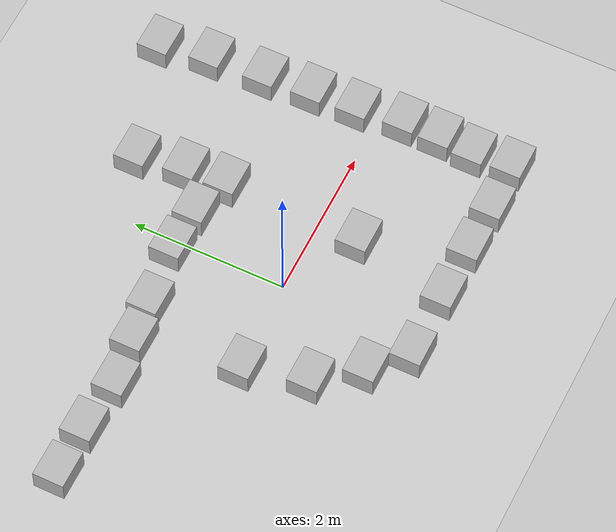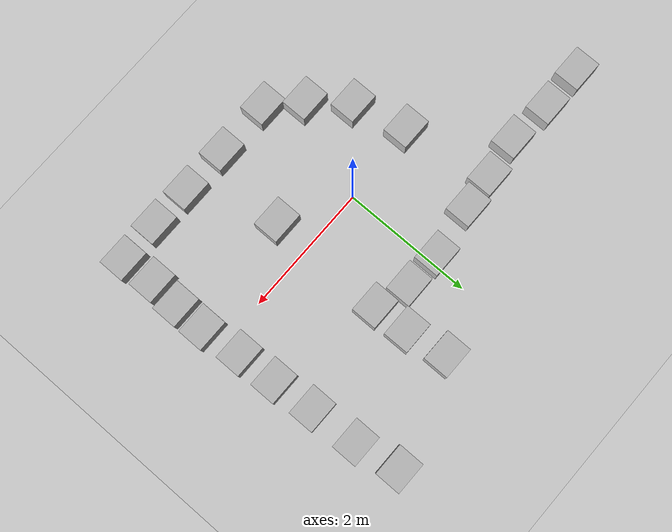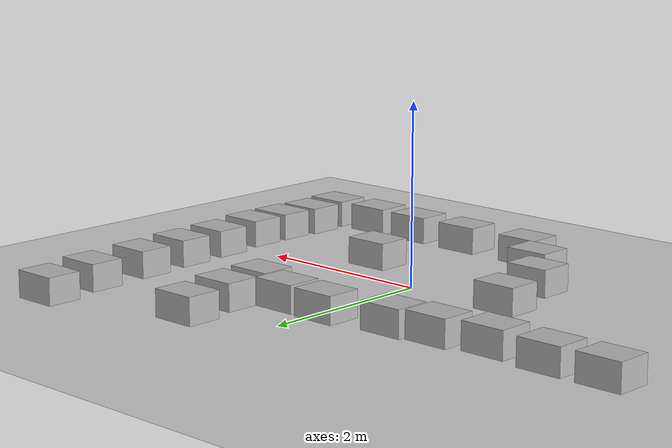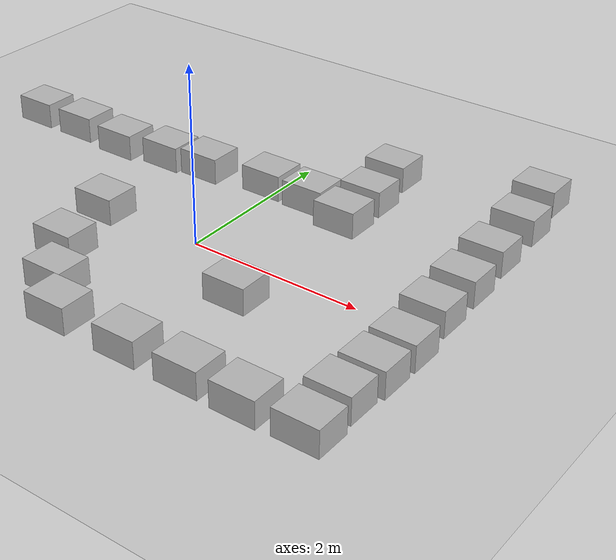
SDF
<sdf version="1.7">
 <world name="default">
  <light name="sun" type="directional">
   <pose>0 0 10 0 -0 0</pose>
   <diffuse>0.8 0.8 0.8 1</diffuse>
   <specular>0.2 0.2 0.2 1</specular>
   <attenuation>
    <range>1000</range>
    <constant>0.9</constant>
    <linear>0.01</linear>
    <quadratic>0.001</quadratic>
   </attenuation>
   <direction>-0.5 0.1 -0.9</direction>
   <spot><inner_angle>0</inner_angle><outer_angle>0</outer_angle><falloff>0</falloff></spot>
  </light>
  <model name="ground_plane">
   <static>1</static>
   <link name="link">
    <collision name="collision">
     <geometry><plane><normal>0 0 1</normal><size>100 100</size></plane></geometry>
     <surface>
      <contact><collide_bitmask>65535</collide_bitmask></contact>
      <friction><ode><mu>100</mu><mu2>50</mu2></ode></friction>
     </surface>
    </collision>
    <visual name="visual">
     <cast_shadows>0</cast_shadows>
     <geometry><plane><normal>0 0 1</normal><size>100 100</size></plane></geometry>
     <material>
      <script><uri>file://media/materials/scripts/gazebo.material</uri><name>Gazebo/Grey</name></script>
     </material>
    </visual>
   </link>
  </model>
  <gravity>0 0 -9.8</gravity>
  <magnetic_field>6e-06 2.3e-05 -4.2e-05</magnetic_field>
  <atmosphere type="adiabatic"/>
  <physics type="ode">
   <max_step_size>0.001</max_step_size>
   <real_time_factor>1</real_time_factor>
   <real_time_update_rate>1000</real_time_update_rate>
  </physics>
  <scene><ambient>0.4 0.4 0.4 1</ambient><background>0.7 0.7 0.7 1</background><shadows>1</shadows></scene>
  <audio><device>default</device></audio>
  <spherical_coordinates>
   <surface_model>EARTH_WGS84</surface_model>
   <latitude_deg>0</latitude_deg>
   <longitude_deg>0</longitude_deg>
   <elevation>0</elevation>
   <heading_deg>0</heading_deg>
  </spherical_coordinates>
  <model name="cardboard_box">
   <pose>1.45283 -1.79461 0.149 0 -0 0</pose>
   <link name="link">
    <inertial>
     <mass>2</mass>
     <inertia>
      <ixx>0.0416667</ixx>
      <ixy>0</ixy>
      <ixz>0</ixz>
      <iyy>0.0566667</iyy>
      <iyz>0</iyz>
      <izz>0.0683333</izz>
     </inertia>
    </inertial>
    <collision name="collision">
     <geometry><box><size>0.5 0.4 0.3</size></box></geometry>
     <surface>
      <friction><ode><mu>1</mu><mu2>1</mu2></ode></friction>
      <contact><ode><kp>1e+07</kp><kd>1</kd><min_depth>0.001</min_depth><max_vel>0.1</max_vel></ode></contact>
     </surface>
    </collision>
    <visual name="visual">
     <pose>0 0 -0.15 0 -0 0</pose>
     <geometry>
      <mesh><uri>model://cardboard_box/meshes/cardboard_box.dae</uri><scale>1.25932 1.00745 0.755591</scale></mesh>
     </geometry>
    </visual>
   </link>
  </model>
  <model name="cardboard_box_clone">
   <pose>2.0946 -1.80229 0.149 0 -0 0</pose>
   <link name="link">
    <inertial>
     <mass>2</mass>
     <inertia>
      <ixx>0.0416667</ixx>
      <ixy>0</ixy>
      <ixz>0</ixz>
      <iyy>0.0566667</iyy>
      <iyz>0</iyz>
      <izz>0.0683333</izz>
     </inertia>
    </inertial>
    <collision name="collision">
     <geometry><box><size>0.5 0.4 0.3</size></box></geometry>
     <surface>
      <friction><ode><mu>1</mu><mu2>1</mu2></ode></friction>
      <contact><ode><kp>1e+07</kp><kd>1</kd><min_depth>0.001</min_depth><max_vel>0.1</max_vel></ode></contact>
     </surface>
    </collision>
    <visual name="visual">
     <pose>0 0 -0.15 0 -0 0</pose>
     <geometry>
      <mesh><uri>model://cardboard_box/meshes/cardboard_box.dae</uri><scale>1.25932 1.00745 0.755591</scale></mesh>
     </geometry>
    </visual>
   </link>
  </model>
  <model name="cardboard_box_clone_0">
   <pose>2.73778 -1.78093 0.149 0 -0 0</pose>
   <link name="link">
    <inertial>
     <mass>2</mass>
     <inertia>
      <ixx>0.0416667</ixx>
      <ixy>0</ixy>
      <ixz>0</ixz>
      <iyy>0.0566667</iyy>
      <iyz>0</iyz>
      <izz>0.0683333</izz>
     </inertia>
    </inertial>
    <collision name="collision">
     <geometry><box><size>0.5 0.4 0.3</size></box></geometry>
     <surface>
      <friction><ode><mu>1</mu><mu2>1</mu2></ode></friction>
      <contact><ode><kp>1e+07</kp><kd>1</kd><min_depth>0.001</min_depth><max_vel>0.1</max_vel></ode></contact>
     </surface>
    </collision>
    <visual name="visual">
     <pose>0 0 -0.15 0 -0 0</pose>
     <geometry>
      <mesh><uri>model://cardboard_box/meshes/cardboard_box.dae</uri><scale>1.25932 1.00745 0.755591</scale></mesh>
     </geometry>
    </visual>
   </link>
  </model>
  <model name="cardboard_box_clone_1">
   <pose>0.719868 -1.78972 0.149 0 -0 0</pose>
   <link name="link">
    <inertial>
     <mass>2</mass>
     <inertia>
      <ixx>0.0416667</ixx>
      <ixy>0</ixy>
      <ixz>0</ixz>
      <iyy>0.0566667</iyy>
      <iyz>0</iyz>
      <izz>0.0683333</izz>
     </inertia>
    </inertial>
    <collision name="collision">
     <geometry><box><size>0.5 0.4 0.3</size></box></geometry>
     <surface>
      <friction><ode><mu>1</mu><mu2>1</mu2></ode></friction>
      <contact><ode><kp>1e+07</kp><kd>1</kd><min_depth>0.001</min_depth><max_vel>0.1</max_vel></ode></contact>
     </surface>
    </collision>
    <visual name="visual">
     <pose>0 0 -0.15 0 -0 0</pose>
     <geometry>
      <mesh><uri>model://cardboard_box/meshes/cardboard_box.dae</uri><scale>1.25932 1.00745 0.755591</scale></mesh>
     </geometry>
    </visual>
   </link>
  </model>
  <model name="cardboard_box_clone_2">
   <pose>2.70289 -1.277 0.149 0 -0 0</pose>
   <link name="link">
    <inertial>
     <mass>2</mass>
     <inertia>
      <ixx>0.0416667</ixx>
      <ixy>0</ixy>
      <ixz>0</ixz>
      <iyy>0.0566667</iyy>
      <iyz>0</iyz>
      <izz>0.0683333</izz>
     </inertia>
    </inertial>
    <collision name="collision">
     <geometry><box><size>0.5 0.4 0.3</size></box></geometry>
     <surface>
      <friction><ode><mu>1</mu><mu2>1</mu2></ode></friction>
      <contact><ode><kp>1e+07</kp><kd>1</kd><min_depth>0.001</min_depth><max_vel>0.1</max_vel></ode></contact>
     </surface>
    </collision>
    <visual name="visual">
     <pose>0 0 -0.15 0 -0 0</pose>
     <geometry>
      <mesh><uri>model://cardboard_box/meshes/cardboard_box.dae</uri><scale>1.25932 1.00745 0.755591</scale></mesh>
     </geometry>
    </visual>
   </link>
  </model>
  <model name="cardboard_box_clone_3">
   <pose>2.73765 -0.810918 0.149 0 -0 0</pose>
   <link name="link">
    <inertial>
     <mass>2</mass>
     <inertia>
      <ixx>0.0416667</ixx>
      <ixy>0</ixy>
      <ixz>0</ixz>
      <iyy>0.0566667</iyy>
      <iyz>0</iyz>
      <izz>0.0683333</izz>
     </inertia>
    </inertial>
    <collision name="collision">
     <geometry><box><size>0.5 0.4 0.3</size></box></geometry>
     <surface>
      <friction><ode><mu>1</mu><mu2>1</mu2></ode></friction>
      <contact><ode><kp>1e+07</kp><kd>1</kd><min_depth>0.001</min_depth><max_vel>0.1</max_vel></ode></contact>
     </surface>
    </collision>
    <visual name="visual">
     <pose>0 0 -0.15 0 -0 0</pose>
     <geometry>
      <mesh><uri>model://cardboard_box/meshes/cardboard_box.dae</uri><scale>1.25932 1.00745 0.755591</scale></mesh>
     </geometry>
    </visual>
   </link>
  </model>
  <model name="cardboard_box_clone_4">
   <pose>2.74001 -0.33051 0.149 0 -0 0</pose>
   <link name="link">
    <inertial>
     <mass>2</mass>
     <inertia>
      <ixx>0.0416667</ixx>
      <ixy>0</ixy>
      <ixz>0</ixz>
      <iyy>0.0566667</iyy>
      <iyz>0</iyz>
      <izz>0.0683333</izz>
     </inertia>
    </inertial>
    <collision name="collision">
     <geometry><box><size>0.5 0.4 0.3</size></box></geometry>
     <surface>
      <friction><ode><mu>1</mu><mu2>1</mu2></ode></friction>
      <contact><ode><kp>1e+07</kp><kd>1</kd><min_depth>0.001</min_depth><max_vel>0.1</max_vel></ode></contact>
     </surface>
    </collision>
    <visual name="visual">
     <pose>0 0 -0.15 0 -0 0</pose>
     <geometry>
      <mesh><uri>model://cardboard_box/meshes/cardboard_box.dae</uri><scale>1.25932 1.00745 0.755591</scale></mesh>
     </geometry>
    </visual>
   </link>
  </model>
  <model name="cardboard_box_clone_5">
   <pose>2.66963 0.283737 0.149 0 -0 0</pose>
   <link name="link">
    <inertial>
     <mass>2</mass>
     <inertia>
      <ixx>0.0416667</ixx>
      <ixy>0</ixy>
      <ixz>0</ixz>
      <iyy>0.0566667</iyy>
      <iyz>0</iyz>
      <izz>0.0683333</izz>
     </inertia>
    </inertial>
    <collision name="collision">
     <geometry><box><size>0.5 0.4 0.3</size></box></geometry>
     <surface>
      <friction><ode><mu>1</mu><mu2>1</mu2></ode></friction>
      <contact><ode><kp>1e+07</kp><kd>1</kd><min_depth>0.001</min_depth><max_vel>0.1</max_vel></ode></contact>
     </surface>
    </collision>
    <visual name="visual">
     <pose>0 0 -0.15 0 -0 0</pose>
     <geometry>
      <mesh><uri>model://cardboard_box/meshes/cardboard_box.dae</uri><scale>1.25932 1.00745 0.755591</scale></mesh>
     </geometry>
    </visual>
   </link>
  </model>
  <model name="cardboard_box_clone_6">
   <pose>2.64024 0.879451 0.149 0 -0 0</pose>
   <link name="link">
    <inertial>
     <mass>2</mass>
     <inertia>
      <ixx>0.0416667</ixx>
      <ixy>0</ixy>
      <ixz>0</ixz>
      <iyy>0.0566667</iyy>
      <iyz>0</iyz>
      <izz>0.0683333</izz>
     </inertia>
    </inertial>
    <collision name="collision">
     <geometry><box><size>0.5 0.4 0.3</size></box></geometry>
     <surface>
      <friction><ode><mu>1</mu><mu2>1</mu2></ode></friction>
      <contact><ode><kp>1e+07</kp><kd>1</kd><min_depth>0.001</min_depth><max_vel>0.1</max_vel></ode></contact>
     </surface>
    </collision>
    <visual name="visual">
     <pose>0 0 -0.15 0 -0 0</pose>
     <geometry>
      <mesh><uri>model://cardboard_box/meshes/cardboard_box.dae</uri><scale>1.25932 1.00745 0.755591</scale></mesh>
     </geometry>
    </visual>
   </link>
  </model>
  <model name="cardboard_box_clone_7">
   <pose>2.58675 1.51573 0.149 0 -0 0</pose>
   <link name="link">
    <inertial>
     <mass>2</mass>
     <inertia>
      <ixx>0.0416667</ixx>
      <ixy>0</ixy>
      <ixz>0</ixz>
      <iyy>0.0566667</iyy>
      <iyz>0</iyz>
      <izz>0.0683333</izz>
     </inertia>
    </inertial>
    <collision name="collision">
     <geometry><box><size>0.5 0.4 0.3</size></box></geometry>
     <surface>
      <friction><ode><mu>1</mu><mu2>1</mu2></ode></friction>
      <contact><ode><kp>1e+07</kp><kd>1</kd><min_depth>0.001</min_depth><max_vel>0.1</max_vel></ode></contact>
     </surface>
    </collision>
    <visual name="visual">
     <pose>0 0 -0.15 0 -0 0</pose>
     <geometry>
      <mesh><uri>model://cardboard_box/meshes/cardboard_box.dae</uri><scale>1.25932 1.00745 0.755591</scale></mesh>
     </geometry>
    </visual>
   </link>
  </model>
  <model name="cardboard_box_clone_8">
   <pose>2.54634 2.24171 0.149 0 -0 0</pose>
   <link name="link">
    <inertial>
     <mass>2</mass>
     <inertia>
      <ixx>0.0416667</ixx>
      <ixy>0</ixy>
      <ixz>0</ixz>
      <iyy>0.0566667</iyy>
      <iyz>0</iyz>
      <izz>0.0683333</izz>
     </inertia>
    </inertial>
    <collision name="collision">
     <geometry><box><size>0.5 0.4 0.3</size></box></geometry>
     <surface>
      <friction><ode><mu>1</mu><mu2>1</mu2></ode></friction>
      <contact><ode><kp>1e+07</kp><kd>1</kd><min_depth>0.001</min_depth><max_vel>0.1</max_vel></ode></contact>
     </surface>
    </collision>
    <visual name="visual">
     <pose>0 0 -0.15 0 -0 0</pose>
     <geometry>
      <mesh><uri>model://cardboard_box/meshes/cardboard_box.dae</uri><scale>1.25932 1.00745 0.755591</scale></mesh>
     </geometry>
    </visual>
   </link>
  </model>
  <model name="cardboard_box_clone_9">
   <pose>2.4377 2.90577 0.149 0 -0 0</pose>
   <link name="link">
    <inertial>
     <mass>2</mass>
     <inertia>
      <ixx>0.0416667</ixx>
      <ixy>0</ixy>
      <ixz>0</ixz>
      <iyy>0.0566667</iyy>
      <iyz>0</iyz>
      <izz>0.0683333</izz>
     </inertia>
    </inertial>
    <collision name="collision">
     <geometry><box><size>0.5 0.4 0.3</size></box></geometry>
     <surface>
      <friction><ode><mu>1</mu><mu2>1</mu2></ode></friction>
      <contact><ode><kp>1e+07</kp><kd>1</kd><min_depth>0.001</min_depth><max_vel>0.1</max_vel></ode></contact>
     </surface>
    </collision>
    <visual name="visual">
     <pose>0 0 -0.15 0 -0 0</pose>
     <geometry>
      <mesh><uri>model://cardboard_box/meshes/cardboard_box.dae</uri><scale>1.25932 1.00745 0.755591</scale></mesh>
     </geometry>
    </visual>
   </link>
  </model>
  <model name="cardboard_box_clone_10">
   <pose>0.969617 -0.541418 0.149 0 -0 0</pose>
   <link name="link">
    <inertial>
     <mass>2</mass>
     <inertia>
      <ixx>0.0416667</ixx>
      <ixy>0</ixy>
      <ixz>0</ixz>
      <iyy>0.0566667</iyy>
      <iyz>0</iyz>
      <izz>0.0683333</izz>
     </inertia>
    </inertial>
    <collision name="collision">
     <geometry><box><size>0.5 0.4 0.3</size></box></geometry>
     <surface>
      <friction><ode><mu>1</mu><mu2>1</mu2></ode></friction>
      <contact><ode><kp>1e+07</kp><kd>1</kd><min_depth>0.001</min_depth><max_vel>0.1</max_vel></ode></contact>
     </surface>
    </collision>
    <visual name="visual">
     <pose>0 0 -0.15 0 -0 0</pose>
     <geometry>
      <mesh><uri>model://cardboard_box/meshes/cardboard_box.dae</uri><scale>1.25932 1.00745 0.755591</scale></mesh>
     </geometry>
    </visual>
   </link>
  </model>
  <model name="cardboard_box_clone_11">
   <pose>0.988159 1.25149 0.149 0 -0 0</pose>
   <link name="link">
    <inertial>
     <mass>2</mass>
     <inertia>
      <ixx>0.0416667</ixx>
      <ixy>0</ixy>
      <ixz>0</ixz>
      <iyy>0.0566667</iyy>
      <iyz>0</iyz>
      <izz>0.0683333</izz>
     </inertia>
    </inertial>
    <collision name="collision">
     <geometry><box><size>0.5 0.4 0.3</size></box></geometry>
     <surface>
      <friction><ode><mu>1</mu><mu2>1</mu2></ode></friction>
      <contact><ode><kp>1e+07</kp><kd>1</kd><min_depth>0.001</min_depth><max_vel>0.1</max_vel></ode></contact>
     </surface>
    </collision>
    <visual name="visual">
     <pose>0 0 -0.15 0 -0 0</pose>
     <geometry>
      <mesh><uri>model://cardboard_box/meshes/cardboard_box.dae</uri><scale>1.25932 1.00745 0.755591</scale></mesh>
     </geometry>
    </visual>
   </link>
  </model>
  <model name="cardboard_box_clone_12">
   <pose>-0.908283 1.31873 0.149 0 -0 0</pose>
   <link name="link">
    <inertial>
     <mass>2</mass>
     <inertia>
      <ixx>0.0416667</ixx>
      <ixy>0</ixy>
      <ixz>0</ixz>
      <iyy>0.0566667</iyy>
      <iyz>0</iyz>
      <izz>0.0683333</izz>
     </inertia>
    </inertial>
    <collision name="collision">
     <geometry><box><size>0.5 0.4 0.3</size></box></geometry>
     <surface>
      <friction><ode><mu>1</mu><mu2>1</mu2></ode></friction>
      <contact><ode><kp>1e+07</kp><kd>1</kd><min_depth>0.001</min_depth><max_vel>0.1</max_vel></ode></contact>
     </surface>
    </collision>
    <visual name="visual">
     <pose>0 0 -0.15 0 -0 0</pose>
     <geometry>
      <mesh><uri>model://cardboard_box/meshes/cardboard_box.dae</uri><scale>1.25932 1.00745 0.755591</scale></mesh>
     </geometry>
    </visual>
   </link>
  </model>
  <model name="cardboard_box_clone_13">
   <pose>-1.00555 -0.860121 0.149158 0 -0 0</pose>
   <link name="link">
    <inertial>
     <mass>2</mass>
     <inertia>
      <ixx>0.0416667</ixx>
      <ixy>0</ixy>
      <ixz>0</ixz>
      <iyy>0.0566667</iyy>
      <iyz>0</iyz>
      <izz>0.0683333</izz>
     </inertia>
    </inertial>
    <collision name="collision">
     <geometry><box><size>0.5 0.4 0.3</size></box></geometry>
     <surface>
      <friction><ode><mu>1</mu><mu2>1</mu2></ode></friction>
      <contact><ode><kp>1e+07</kp><kd>1</kd><min_depth>0.001</min_depth><max_vel>0.1</max_vel></ode></contact>
     </surface>
    </collision>
    <visual name="visual">
     <pose>0 0 -0.15 0 -0 0</pose>
     <geometry>
      <mesh><uri>model://cardboard_box/meshes/cardboard_box.dae</uri><scale>1.25932 1.00745 0.755591</scale></mesh>
     </geometry>
    </visual>
   </link>
  </model>
  <model name="cardboard_box_clone_14">
   <pose>-0.148982 -1.79339 0.149 0 -0 0.000476</pose>
   <link name="link">
    <inertial>
     <mass>2</mass>
     <inertia>
      <ixx>0.0416667</ixx>
      <ixy>0</ixy>
      <ixz>0</ixz>
      <iyy>0.0566667</iyy>
      <iyz>0</iyz>
      <izz>0.0683333</izz>
     </inertia>
    </inertial>
    <collision name="collision">
     <geometry><box><size>0.5 0.4 0.3</size></box></geometry>
     <surface>
      <friction><ode><mu>1</mu><mu2>1</mu2></ode></friction>
      <contact><ode><kp>1e+07</kp><kd>1</kd><min_depth>0.001</min_depth><max_vel>0.1</max_vel></ode></contact>
     </surface>
    </collision>
    <visual name="visual">
     <pose>0 0 -0.15 0 -0 0</pose>
     <geometry>
      <mesh><uri>model://cardboard_box/meshes/cardboard_box.dae</uri><scale>1.25932 1.00745 0.755591</scale></mesh>
     </geometry>
    </visual>
   </link>
  </model>
  <model name="cardboard_box_clone_15">
   <pose>-0.591372 -1.39451 0.149 0 -0 0.000468</pose>
   <link name="link">
    <inertial>
     <mass>2</mass>
     <inertia>
      <ixx>0.0416667</ixx>
      <ixy>0</ixy>
      <ixz>0</ixz>
      <iyy>0.0566667</iyy>
      <iyz>0</iyz>
      <izz>0.0683333</izz>
     </inertia>
    </inertial>
    <collision name="collision">
     <geometry><box><size>0.5 0.4 0.3</size></box></geometry>
     <surface>
      <friction><ode><mu>1</mu><mu2>1</mu2></ode></friction>
      <contact><ode><kp>1e+07</kp><kd>1</kd><min_depth>0.001</min_depth><max_vel>0.1</max_vel></ode></contact>
     </surface>
    </collision>
    <visual name="visual">
     <pose>0 0 -0.15 0 -0 0</pose>
     <geometry>
      <mesh><uri>model://cardboard_box/meshes/cardboard_box.dae</uri><scale>1.25932 1.00745 0.755591</scale></mesh>
     </geometry>
    </visual>
   </link>
  </model>
  <model name="cardboard_box_clone_16">
   <pose>-0.107461 1.42753 0.149 0 -0 0</pose>
   <link name="link">
    <inertial>
     <mass>2</mass>
     <inertia>
      <ixx>0.0416667</ixx>
      <ixy>0</ixy>
      <ixz>0</ixz>
      <iyy>0.0566667</iyy>
      <iyz>0</iyz>
      <izz>0.0683333</izz>
     </inertia>
    </inertial>
    <collision name="collision">
     <geometry><box><size>0.5 0.4 0.3</size></box></geometry>
     <surface>
      <friction><ode><mu>1</mu><mu2>1</mu2></ode></friction>
      <contact><ode><kp>1e+07</kp><kd>1</kd><min_depth>0.001</min_depth><max_vel>0.1</max_vel></ode></contact>
     </surface>
    </collision>
    <visual name="visual">
     <pose>0 0 -0.15 0 -0 0</pose>
     <geometry>
      <mesh><uri>model://cardboard_box/meshes/cardboard_box.dae</uri><scale>1.25932 1.00745 0.755591</scale></mesh>
     </geometry>
    </visual>
   </link>
  </model>
  <model name="cardboard_box_clone_17">
   <pose>-2.0619 1.17702 0.149 0 -0 0</pose>
   <link name="link">
    <inertial>
     <mass>2</mass>
     <inertia>
      <ixx>0.0416667</ixx>
      <ixy>0</ixy>
      <ixz>0</ixz>
      <iyy>0.0566667</iyy>
      <iyz>0</iyz>
      <izz>0.0683333</izz>
     </inertia>
    </inertial>
    <collision name="collision">
     <geometry><box><size>0.5 0.4 0.3</size></box></geometry>
     <surface>
      <friction><ode><mu>1</mu><mu2>1</mu2></ode></friction>
      <contact><ode><kp>1e+07</kp><kd>1</kd><min_depth>0.001</min_depth><max_vel>0.1</max_vel></ode></contact>
     </surface>
    </collision>
    <visual name="visual">
     <pose>0 0 -0.15 0 -0 0</pose>
     <geometry>
      <mesh><uri>model://cardboard_box/meshes/cardboard_box.dae</uri><scale>1.25932 1.00745 0.755591</scale></mesh>
     </geometry>
    </visual>
   </link>
  </model>
  <model name="cardboard_box_clone_18">
   <pose>-3.41382 1.22667 0.149 0 -0 0</pose>
   <link name="link">
    <inertial>
     <mass>2</mass>
     <inertia>
      <ixx>0.0416667</ixx>
      <ixy>0</ixy>
      <ixz>0</ixz>
      <iyy>0.0566667</iyy>
      <iyz>0</iyz>
      <izz>0.0683333</izz>
     </inertia>
    </inertial>
    <collision name="collision">
     <geometry><box><size>0.5 0.4 0.3</size></box></geometry>
     <surface>
      <friction><ode><mu>1</mu><mu2>1</mu2></ode></friction>
      <contact><ode><kp>1e+07</kp><kd>1</kd><min_depth>0.001</min_depth><max_vel>0.1</max_vel></ode></contact>
     </surface>
    </collision>
    <visual name="visual">
     <pose>0 0 -0.15 0 -0 0</pose>
     <geometry>
      <mesh><uri>model://cardboard_box/meshes/cardboard_box.dae</uri><scale>1.25932 1.00745 0.755591</scale></mesh>
     </geometry>
    </visual>
   </link>
  </model>
  <model name="cardboard_box_clone_19">
   <pose>0.461097 1.40704 0.149 0 -0 0.006769</pose>
   <link name="link">
    <inertial>
     <mass>2</mass>
     <inertia>
      <ixx>0.0416667</ixx>
      <ixy>0</ixy>
      <ixz>0</ixz>
      <iyy>0.0566667</iyy>
      <iyz>0</iyz>
      <izz>0.0683333</izz>
     </inertia>
    </inertial>
    <collision name="collision">
     <geometry><box><size>0.5 0.4 0.3</size></box></geometry>
     <surface>
      <friction><ode><mu>1</mu><mu2>1</mu2></ode></friction>
      <contact><ode><kp>1e+07</kp><kd>1</kd><min_depth>0.001</min_depth><max_vel>0.1</max_vel></ode></contact>
     </surface>
    </collision>
    <visual name="visual">
     <pose>0 0 -0.15 0 -0 0</pose>
     <geometry>
      <mesh><uri>model://cardboard_box/meshes/cardboard_box.dae</uri><scale>1.25932 1.00745 0.755591</scale></mesh>
     </geometry>
    </visual>
   </link>
  </model>
  <model name="cardboard_box_clone_20">
   <pose>-1.43731 1.26236 0.149 0 -0 0</pose>
   <link name="link">
    <inertial>
     <mass>2</mass>
     <inertia>
      <ixx>0.0416667</ixx>
      <ixy>0</ixy>
      <ixz>0</ixz>
      <iyy>0.0566667</iyy>
      <iyz>0</iyz>
      <izz>0.0683333</izz>
     </inertia>
    </inertial>
    <collision name="collision">
     <geometry><box><size>0.5 0.4 0.3</size></box></geometry>
     <surface>
      <friction><ode><mu>1</mu><mu2>1</mu2></ode></friction>
      <contact><ode><kp>1e+07</kp><kd>1</kd><min_depth>0.001</min_depth><max_vel>0.1</max_vel></ode></contact>
     </surface>
    </collision>
    <visual name="visual">
     <pose>0 0 -0.15 0 -0 0</pose>
     <geometry>
      <mesh><uri>model://cardboard_box/meshes/cardboard_box.dae</uri><scale>1.25932 1.00745 0.755591</scale></mesh>
     </geometry>
    </visual>
   </link>
  </model>
  <model name="cardboard_box_clone_21">
   <pose>-2.75777 1.23013 0.149 0 -0 0</pose>
   <link name="link">
    <inertial>
     <mass>2</mass>
     <inertia>
      <ixx>0.0416667</ixx>
      <ixy>0</ixy>
      <ixz>0</ixz>
      <iyy>0.0566667</iyy>
      <iyz>0</iyz>
      <izz>0.0683333</izz>
     </inertia>
    </inertial>
    <collision name="collision">
     <geometry><box><size>0.5 0.4 0.3</size></box></geometry>
     <surface>
      <friction><ode><mu>1</mu><mu2>1</mu2></ode></friction>
      <contact><ode><kp>1e+07</kp><kd>1</kd><min_depth>0.001</min_depth><max_vel>0.1</max_vel></ode></contact>
     </surface>
    </collision>
    <visual name="visual">
     <pose>0 0 -0.15 0 -0 0</pose>
     <geometry>
      <mesh><uri>model://cardboard_box/meshes/cardboard_box.dae</uri><scale>1.25932 1.00745 0.755591</scale></mesh>
     </geometry>
    </visual>
   </link>
  </model>
  <model name="cardboard_box_clone_22">
   <pose>0.957533 1.79053 0.149 0 -0 0.00726</pose>
   <link name="link">
    <inertial>
     <mass>2</mass>
     <inertia>
      <ixx>0.0416667</ixx>
      <ixy>0</ixy>
      <ixz>0</ixz>
      <iyy>0.0566667</iyy>
      <iyz>0</iyz>
      <izz>0.0683333</izz>
     </inertia>
    </inertial>
    <collision name="collision">
     <geometry><box><size>0.5 0.4 0.3</size></box></geometry>
     <surface>
      <friction><ode><mu>1</mu><mu2>1</mu2></ode></friction>
      <contact><ode><kp>1e+07</kp><kd>1</kd><min_depth>0.001</min_depth><max_vel>0.1</max_vel></ode></contact>
     </surface>
    </collision>
    <visual name="visual">
     <pose>0 0 -0.15 0 -0 0</pose>
     <geometry>
      <mesh><uri>model://cardboard_box/meshes/cardboard_box.dae</uri><scale>1.25932 1.00745 0.755591</scale></mesh>
     </geometry>
    </visual>
   </link>
  </model>
  <model name="cardboard_box_clone_23">
   <pose>0.862637 2.41382 0.149 0 -0 0</pose>
   <link name="link">
    <inertial>
     <mass>2</mass>
     <inertia>
      <ixx>0.0416667</ixx>
      <ixy>0</ixy>
      <ixz>0</ixz>
      <iyy>0.0566667</iyy>
      <iyz>0</iyz>
      <izz>0.0683333</izz>
     </inertia>
    </inertial>
    <collision name="collision">
     <geometry><box><size>0.5 0.4 0.3</size></box></geometry>
     <surface>
      <friction><ode><mu>1</mu><mu2>1</mu2></ode></friction>
      <contact><ode><kp>1e+07</kp><kd>1</kd><min_depth>0.001</min_depth><max_vel>0.1</max_vel></ode></contact>
     </surface>
    </collision>
    <visual name="visual">
     <pose>0 0 -0.15 0 -0 0</pose>
     <geometry>
      <mesh><uri>model://cardboard_box/meshes/cardboard_box.dae</uri><scale>1.25932 1.00745 0.755591</scale></mesh>
     </geometry>
    </visual>
   </link>
  </model>
  <model name="cardboard_box_clone_24">
   <pose>-1.20665 -0.058614 0.149 0 -0 0</pose>
   <link name="link">
    <inertial>
     <mass>2</mass>
     <inertia>
      <ixx>0.0416667</ixx>
      <ixy>0</ixy>
      <ixz>0</ixz>
      <iyy>0.0566667</iyy>
      <iyz>0</iyz>
      <izz>0.0683333</izz>
     </inertia>
    </inertial>
    <collision name="collision">
     <geometry><box><size>0.5 0.4 0.3</size></box></geometry>
     <surface>
      <friction><ode><mu>1</mu><mu2>1</mu2></ode></friction>
      <contact><ode><kp>1e+07</kp><kd>1</kd><min_depth>0.001</min_depth><max_vel>0.1</max_vel></ode></contact>
     </surface>
    </collision>
    <visual name="visual">
     <pose>0 0 -0.15 0 -0 0</pose>
     <geometry>
      <mesh><uri>model://cardboard_box/meshes/cardboard_box.dae</uri><scale>1.25932 1.00745 0.755591</scale></mesh>
     </geometry>
    </visual>
   </link>
  </model>
 </world>
</sdf>
